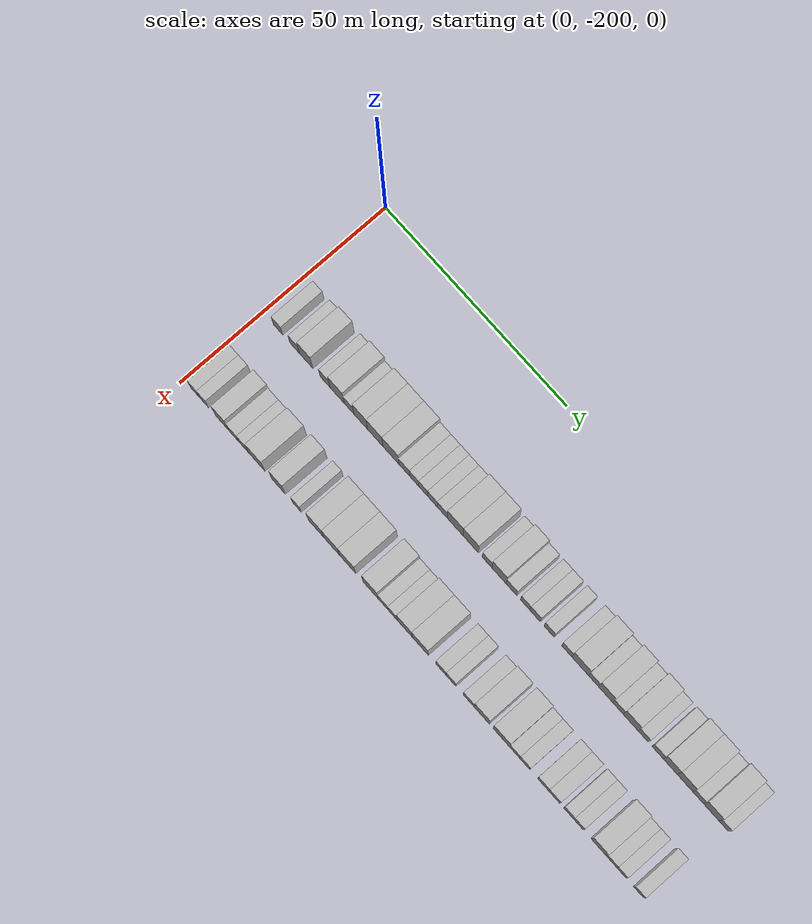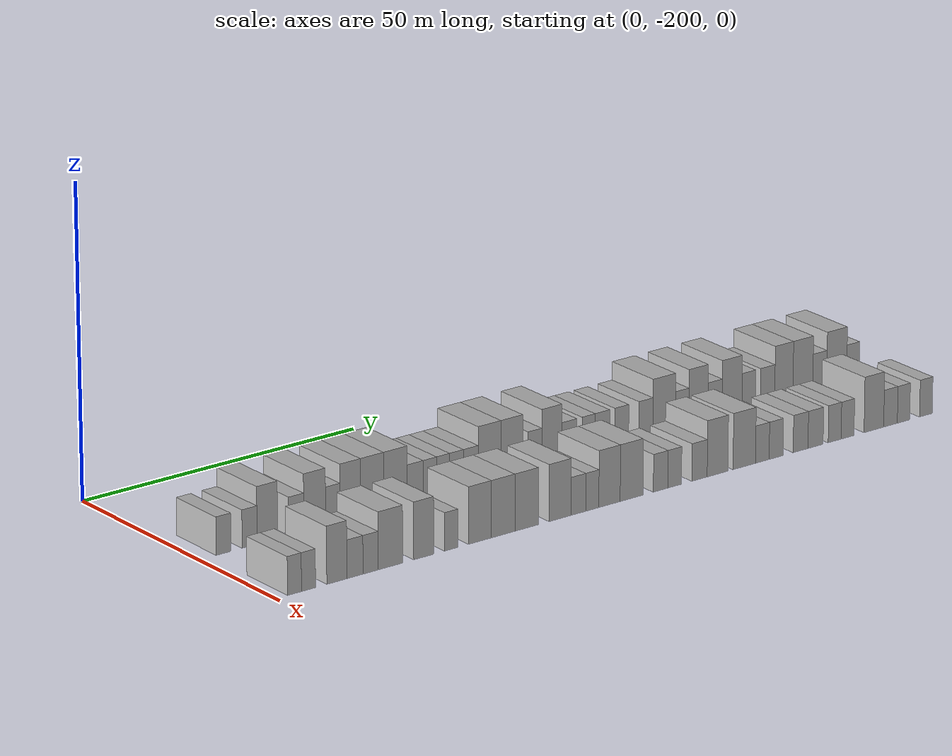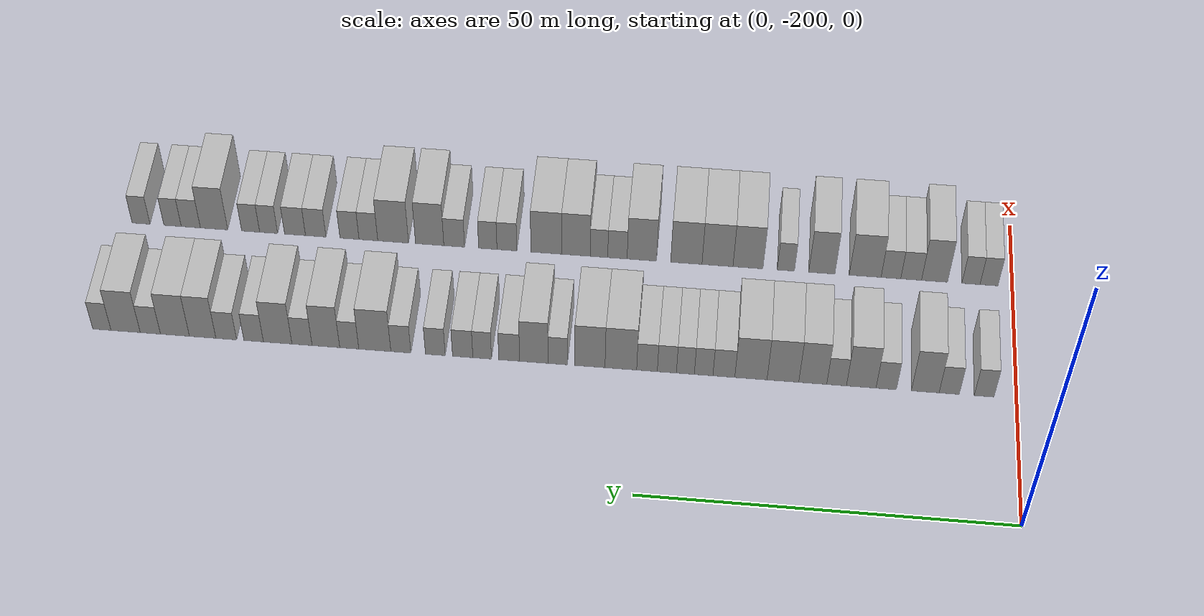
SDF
<sdf version="1.6">
 <world name="default">
  <model name="building_1">
   <static>1</static>
   <pose>25.0000 -195.6817 0 0.000000 0.000000 0.000000</pose>
   <link name="link">
    <pose>0 0 3.00 0 0 0</pose>
    <collision name="collision"><geometry><box><size>10.0000 2.6366 6.0000</size></box></geometry></collision>
    <visual name="visual">
     <cast_shadows>0</cast_shadows>
     <geometry><box><size>10.0000 2.6366 6.0000</size></box></geometry>
     <material>
      <script>
       <uri>model://HANNAS_wall/materials/scripts</uri>
       <uri>model://HANNAS_wall/materials/textures</uri>
       <name>vrc/HANNAS_wall</name>
      </script>
     </material>
    </visual>
   </link>
  </model>
  <model name="building_2">
   <static>1</static>
   <pose>25.0000 -191.0178 0 0.000000 0.000000 0.000000</pose>
   <link name="link">
    <pose>0 0 3.00 0 0 0</pose>
    <collision name="collision"><geometry><box><size>10.0000 2.6912 6.0000</size></box></geometry></collision>
    <visual name="visual">
     <cast_shadows>0</cast_shadows>
     <geometry><box><size>10.0000 2.6912 6.0000</size></box></geometry>
     <material>
      <script>
       <uri>model://HANNAS_wall/materials/scripts</uri>
       <uri>model://HANNAS_wall/materials/textures</uri>
       <name>vrc/HANNAS_wall</name>
      </script>
     </material>
    </visual>
   </link>
  </model>
  <model name="building_3">
   <static>1</static>
   <pose>25.0000 -187.8181 0 0.000000 0.000000 0.000000</pose>
   <link name="link">
    <pose>0 0 4.50 0 0 0</pose>
    <collision name="collision"><geometry><box><size>10.0000 3.7082 9.0000</size></box></geometry></collision>
    <visual name="visual">
     <cast_shadows>0</cast_shadows>
     <geometry><box><size>10.0000 3.7082 9.0000</size></box></geometry>
     <material>
      <script>
       <uri>model://HANNAS_wall/materials/scripts</uri>
       <uri>model://HANNAS_wall/materials/textures</uri>
       <name>vrc/HANNAS_wall</name>
      </script>
     </material>
    </visual>
   </link>
  </model>
  <model name="building_4">
   <static>1</static>
   <pose>25.0000 -182.5960 0 0.000000 0.000000 0.000000</pose>
   <link name="link">
    <pose>0 0 3.00 0 0 0</pose>
    <collision name="collision"><geometry><box><size>10.0000 2.7359 6.0000</size></box></geometry></collision>
    <visual name="visual">
     <cast_shadows>0</cast_shadows>
     <geometry><box><size>10.0000 2.7359 6.0000</size></box></geometry>
     <material>
      <script>
       <uri>model://HANNAS_wall/materials/scripts</uri>
       <uri>model://HANNAS_wall/materials/textures</uri>
       <name>vrc/HANNAS_wall</name>
      </script>
     </material>
    </visual>
   </link>
  </model>
  <model name="building_5">
   <static>1</static>
   <pose>25.0000 -179.2441 0 0.000000 0.000000 0.000000</pose>
   <link name="link">
    <pose>0 0 4.50 0 0 0</pose>
    <collision name="collision"><geometry><box><size>10.0000 3.9679 9.0000</size></box></geometry></collision>
    <visual name="visual">
     <cast_shadows>0</cast_shadows>
     <geometry><box><size>10.0000 3.9679 9.0000</size></box></geometry>
     <material>
      <script>
       <uri>model://HANNAS_wall/materials/scripts</uri>
       <uri>model://HANNAS_wall/materials/textures</uri>
       <name>vrc/HANNAS_wall</name>
      </script>
     </material>
    </visual>
   </link>
  </model>
  <model name="building_6">
   <static>1</static>
   <pose>25.0000 -175.9373 0 0.000000 0.000000 0.000000</pose>
   <link name="link">
    <pose>0 0 3.00 0 0 0</pose>
    <collision name="collision"><geometry><box><size>10.0000 2.6457 6.0000</size></box></geometry></collision>
    <visual name="visual">
     <cast_shadows>0</cast_shadows>
     <geometry><box><size>10.0000 2.6457 6.0000</size></box></geometry>
     <material>
      <script>
       <uri>model://HANNAS_wall/materials/scripts</uri>
       <uri>model://HANNAS_wall/materials/textures</uri>
       <name>vrc/HANNAS_wall</name>
      </script>
     </material>
    </visual>
   </link>
  </model>
  <model name="building_7">
   <static>1</static>
   <pose>25.0000 -172.7317 0 0.000000 0.000000 0.000000</pose>
   <link name="link">
    <pose>0 0 4.50 0 0 0</pose>
    <collision name="collision"><geometry><box><size>10.0000 3.7654 9.0000</size></box></geometry></collision>
    <visual name="visual">
     <cast_shadows>0</cast_shadows>
     <geometry><box><size>10.0000 3.7654 9.0000</size></box></geometry>
     <material>
      <script>
       <uri>model://HANNAS_wall/materials/scripts</uri>
       <uri>model://HANNAS_wall/materials/textures</uri>
       <name>vrc/HANNAS_wall</name>
      </script>
     </material>
    </visual>
   </link>
  </model>
  <model name="building_8">
   <static>1</static>
   <pose>25.0000 -168.7135 0 0.000000 0.000000 0.000000</pose>
   <link name="link">
    <pose>0 0 4.50 0 0 0</pose>
    <collision name="collision"><geometry><box><size>10.0000 4.2710 9.0000</size></box></geometry></collision>
    <visual name="visual">
     <cast_shadows>0</cast_shadows>
     <geometry><box><size>10.0000 4.2710 9.0000</size></box></geometry>
     <material>
      <script>
       <uri>model://HANNAS_wall/materials/scripts</uri>
       <uri>model://HANNAS_wall/materials/textures</uri>
       <name>vrc/HANNAS_wall</name>
      </script>
     </material>
    </visual>
   </link>
  </model>
  <model name="building_9">
   <static>1</static>
   <pose>25.0000 -164.4057 0 0.000000 0.000000 0.000000</pose>
   <link name="link">
    <pose>0 0 4.50 0 0 0</pose>
    <collision name="collision"><geometry><box><size>10.0000 4.3447 9.0000</size></box></geometry></collision>
    <visual name="visual">
     <cast_shadows>0</cast_shadows>
     <geometry><box><size>10.0000 4.3447 9.0000</size></box></geometry>
     <material>
      <script>
       <uri>model://HANNAS_wall/materials/scripts</uri>
       <uri>model://HANNAS_wall/materials/textures</uri>
       <name>vrc/HANNAS_wall</name>
      </script>
     </material>
    </visual>
   </link>
  </model>
  <model name="building_10">
   <static>1</static>
   <pose>25.0000 -160.7560 0 0.000000 0.000000 0.000000</pose>
   <link name="link">
    <pose>0 0 3.00 0 0 0</pose>
    <collision name="collision"><geometry><box><size>10.0000 2.9547 6.0000</size></box></geometry></collision>
    <visual name="visual">
     <cast_shadows>0</cast_shadows>
     <geometry><box><size>10.0000 2.9547 6.0000</size></box></geometry>
     <material>
      <script>
       <uri>model://HANNAS_wall/materials/scripts</uri>
       <uri>model://HANNAS_wall/materials/textures</uri>
       <name>vrc/HANNAS_wall</name>
      </script>
     </material>
    </visual>
   </link>
  </model>
  <model name="building_11">
   <static>1</static>
   <pose>25.0000 -158.0218 0 0.000000 0.000000 0.000000</pose>
   <link name="link">
    <pose>0 0 3.00 0 0 0</pose>
    <collision name="collision"><geometry><box><size>10.0000 2.5139 6.0000</size></box></geometry></collision>
    <visual name="visual">
     <cast_shadows>0</cast_shadows>
     <geometry><box><size>10.0000 2.5139 6.0000</size></box></geometry>
     <material>
      <script>
       <uri>model://HANNAS_wall/materials/scripts</uri>
       <uri>model://HANNAS_wall/materials/textures</uri>
       <name>vrc/HANNAS_wall</name>
      </script>
     </material>
    </visual>
   </link>
  </model>
  <model name="building_12">
   <static>1</static>
   <pose>25.0000 -155.5524 0 0.000000 0.000000 0.000000</pose>
   <link name="link">
    <pose>0 0 3.00 0 0 0</pose>
    <collision name="collision"><geometry><box><size>10.0000 2.4248 6.0000</size></box></geometry></collision>
    <visual name="visual">
     <cast_shadows>0</cast_shadows>
     <geometry><box><size>10.0000 2.4248 6.0000</size></box></geometry>
     <material>
      <script>
       <uri>model://HANNAS_wall/materials/scripts</uri>
       <uri>model://HANNAS_wall/materials/textures</uri>
       <name>vrc/HANNAS_wall</name>
      </script>
     </material>
    </visual>
   </link>
  </model>
  <model name="building_13">
   <static>1</static>
   <pose>25.0000 -153.0496 0 0.000000 0.000000 0.000000</pose>
   <link name="link">
    <pose>0 0 3.00 0 0 0</pose>
    <collision name="collision"><geometry><box><size>10.0000 2.5808 6.0000</size></box></geometry></collision>
    <visual name="visual">
     <cast_shadows>0</cast_shadows>
     <geometry><box><size>10.0000 2.5808 6.0000</size></box></geometry>
     <material>
      <script>
       <uri>model://HANNAS_wall/materials/scripts</uri>
       <uri>model://HANNAS_wall/materials/textures</uri>
       <name>vrc/HANNAS_wall</name>
      </script>
     </material>
    </visual>
   </link>
  </model>
  <model name="building_14">
   <static>1</static>
   <pose>25.0000 -150.3608 0 0.000000 0.000000 0.000000</pose>
   <link name="link">
    <pose>0 0 3.00 0 0 0</pose>
    <collision name="collision"><geometry><box><size>10.0000 2.7970 6.0000</size></box></geometry></collision>
    <visual name="visual">
     <cast_shadows>0</cast_shadows>
     <geometry><box><size>10.0000 2.7970 6.0000</size></box></geometry>
     <material>
      <script>
       <uri>model://HANNAS_wall/materials/scripts</uri>
       <uri>model://HANNAS_wall/materials/textures</uri>
       <name>vrc/HANNAS_wall</name>
      </script>
     </material>
    </visual>
   </link>
  </model>
  <model name="building_15">
   <static>1</static>
   <pose>25.0000 -146.8116 0 0.000000 0.000000 0.000000</pose>
   <link name="link">
    <pose>0 0 4.50 0 0 0</pose>
    <collision name="collision"><geometry><box><size>10.0000 4.3014 9.0000</size></box></geometry></collision>
    <visual name="visual">
     <cast_shadows>0</cast_shadows>
     <geometry><box><size>10.0000 4.3014 9.0000</size></box></geometry>
     <material>
      <script>
       <uri>model://HANNAS_wall/materials/scripts</uri>
       <uri>model://HANNAS_wall/materials/textures</uri>
       <name>vrc/HANNAS_wall</name>
      </script>
     </material>
    </visual>
   </link>
  </model>
  <model name="building_16">
   <static>1</static>
   <pose>25.0000 -142.6003 0 0.000000 0.000000 0.000000</pose>
   <link name="link">
    <pose>0 0 4.50 0 0 0</pose>
    <collision name="collision"><geometry><box><size>10.0000 4.1212 9.0000</size></box></geometry></collision>
    <visual name="visual">
     <cast_shadows>0</cast_shadows>
     <geometry><box><size>10.0000 4.1212 9.0000</size></box></geometry>
     <material>
      <script>
       <uri>model://HANNAS_wall/materials/scripts</uri>
       <uri>model://HANNAS_wall/materials/textures</uri>
       <name>vrc/HANNAS_wall</name>
      </script>
     </material>
    </visual>
   </link>
  </model>
  <model name="building_17">
   <static>1</static>
   <pose>25.0000 -138.2279 0 0.000000 0.000000 0.000000</pose>
   <link name="link">
    <pose>0 0 3.00 0 0 0</pose>
    <collision name="collision"><geometry><box><size>10.0000 2.6235 6.0000</size></box></geometry></collision>
    <visual name="visual">
     <cast_shadows>0</cast_shadows>
     <geometry><box><size>10.0000 2.6235 6.0000</size></box></geometry>
     <material>
      <script>
       <uri>model://HANNAS_wall/materials/scripts</uri>
       <uri>model://HANNAS_wall/materials/textures</uri>
       <name>vrc/HANNAS_wall</name>
      </script>
     </material>
    </visual>
   </link>
  </model>
  <model name="building_18">
   <static>1</static>
   <pose>25.0000 -134.9828 0 0.000000 0.000000 0.000000</pose>
   <link name="link">
    <pose>0 0 4.50 0 0 0</pose>
    <collision name="collision"><geometry><box><size>10.0000 3.8667 9.0000</size></box></geometry></collision>
    <visual name="visual">
     <cast_shadows>0</cast_shadows>
     <geometry><box><size>10.0000 3.8667 9.0000</size></box></geometry>
     <material>
      <script>
       <uri>model://HANNAS_wall/materials/scripts</uri>
       <uri>model://HANNAS_wall/materials/textures</uri>
       <name>vrc/HANNAS_wall</name>
      </script>
     </material>
    </visual>
   </link>
  </model>
  <model name="building_19">
   <static>1</static>
   <pose>25.0000 -131.6257 0 0.000000 0.000000 0.000000</pose>
   <link name="link">
    <pose>0 0 3.00 0 0 0</pose>
    <collision name="collision"><geometry><box><size>10.0000 2.8475 6.0000</size></box></geometry></collision>
    <visual name="visual">
     <cast_shadows>0</cast_shadows>
     <geometry><box><size>10.0000 2.8475 6.0000</size></box></geometry>
     <material>
      <script>
       <uri>model://HANNAS_wall/materials/scripts</uri>
       <uri>model://HANNAS_wall/materials/textures</uri>
       <name>vrc/HANNAS_wall</name>
      </script>
     </material>
    </visual>
   </link>
  </model>
  <model name="building_20">
   <static>1</static>
   <pose>25.0000 -127.9297 0 0.000000 0.000000 0.000000</pose>
   <link name="link">
    <pose>0 0 3.00 0 0 0</pose>
    <collision name="collision"><geometry><box><size>10.0000 2.5444 6.0000</size></box></geometry></collision>
    <visual name="visual">
     <cast_shadows>0</cast_shadows>
     <geometry><box><size>10.0000 2.5444 6.0000</size></box></geometry>
     <material>
      <script>
       <uri>model://HANNAS_wall/materials/scripts</uri>
       <uri>model://HANNAS_wall/materials/textures</uri>
       <name>vrc/HANNAS_wall</name>
      </script>
     </material>
    </visual>
   </link>
  </model>
  <model name="building_21">
   <static>1</static>
   <pose>25.0000 -125.2674 0 0.000000 0.000000 0.000000</pose>
   <link name="link">
    <pose>0 0 3.00 0 0 0</pose>
    <collision name="collision"><geometry><box><size>10.0000 2.7802 6.0000</size></box></geometry></collision>
    <visual name="visual">
     <cast_shadows>0</cast_shadows>
     <geometry><box><size>10.0000 2.7802 6.0000</size></box></geometry>
     <material>
      <script>
       <uri>model://HANNAS_wall/materials/scripts</uri>
       <uri>model://HANNAS_wall/materials/textures</uri>
       <name>vrc/HANNAS_wall</name>
      </script>
     </material>
    </visual>
   </link>
  </model>
  <model name="building_22">
   <static>1</static>
   <pose>25.0000 -121.5234 0 0.000000 0.000000 0.000000</pose>
   <link name="link">
    <pose>0 0 3.00 0 0 0</pose>
    <collision name="collision"><geometry><box><size>10.0000 2.7080 6.0000</size></box></geometry></collision>
    <visual name="visual">
     <cast_shadows>0</cast_shadows>
     <geometry><box><size>10.0000 2.7080 6.0000</size></box></geometry>
     <material>
      <script>
       <uri>model://HANNAS_wall/materials/scripts</uri>
       <uri>model://HANNAS_wall/materials/textures</uri>
       <name>vrc/HANNAS_wall</name>
      </script>
     </material>
    </visual>
   </link>
  </model>
  <model name="building_23">
   <static>1</static>
   <pose>25.0000 -116.7944 0 0.000000 0.000000 0.000000</pose>
   <link name="link">
    <pose>0 0 3.00 0 0 0</pose>
    <collision name="collision"><geometry><box><size>10.0000 2.7501 6.0000</size></box></geometry></collision>
    <visual name="visual">
     <cast_shadows>0</cast_shadows>
     <geometry><box><size>10.0000 2.7501 6.0000</size></box></geometry>
     <material>
      <script>
       <uri>model://HANNAS_wall/materials/scripts</uri>
       <uri>model://HANNAS_wall/materials/textures</uri>
       <name>vrc/HANNAS_wall</name>
      </script>
     </material>
    </visual>
   </link>
  </model>
  <model name="building_24">
   <static>1</static>
   <pose>25.0000 -113.2171 0 0.000000 0.000000 0.000000</pose>
   <link name="link">
    <pose>0 0 4.50 0 0 0</pose>
    <collision name="collision"><geometry><box><size>10.0000 4.4045 9.0000</size></box></geometry></collision>
    <visual name="visual">
     <cast_shadows>0</cast_shadows>
     <geometry><box><size>10.0000 4.4045 9.0000</size></box></geometry>
     <material>
      <script>
       <uri>model://HANNAS_wall/materials/scripts</uri>
       <uri>model://HANNAS_wall/materials/textures</uri>
       <name>vrc/HANNAS_wall</name>
      </script>
     </material>
    </visual>
   </link>
  </model>
  <model name="building_25">
   <static>1</static>
   <pose>25.0000 -109.7025 0 0.000000 0.000000 0.000000</pose>
   <link name="link">
    <pose>0 0 3.00 0 0 0</pose>
    <collision name="collision"><geometry><box><size>10.0000 2.6247 6.0000</size></box></geometry></collision>
    <visual name="visual">
     <cast_shadows>0</cast_shadows>
     <geometry><box><size>10.0000 2.6247 6.0000</size></box></geometry>
     <material>
      <script>
       <uri>model://HANNAS_wall/materials/scripts</uri>
       <uri>model://HANNAS_wall/materials/textures</uri>
       <name>vrc/HANNAS_wall</name>
      </script>
     </material>
    </visual>
   </link>
  </model>
  <model name="building_26">
   <static>1</static>
   <pose>25.0000 -106.4884 0 0.000000 0.000000 0.000000</pose>
   <link name="link">
    <pose>0 0 4.50 0 0 0</pose>
    <collision name="collision"><geometry><box><size>10.0000 3.8035 9.0000</size></box></geometry></collision>
    <visual name="visual">
     <cast_shadows>0</cast_shadows>
     <geometry><box><size>10.0000 3.8035 9.0000</size></box></geometry>
     <material>
      <script>
       <uri>model://HANNAS_wall/materials/scripts</uri>
       <uri>model://HANNAS_wall/materials/textures</uri>
       <name>vrc/HANNAS_wall</name>
      </script>
     </material>
    </visual>
   </link>
  </model>
  <model name="building_27">
   <static>1</static>
   <pose>25.0000 -103.1999 0 0.000000 0.000000 0.000000</pose>
   <link name="link">
    <pose>0 0 3.00 0 0 0</pose>
    <collision name="collision"><geometry><box><size>10.0000 2.7735 6.0000</size></box></geometry></collision>
    <visual name="visual">
     <cast_shadows>0</cast_shadows>
     <geometry><box><size>10.0000 2.7735 6.0000</size></box></geometry>
     <material>
      <script>
       <uri>model://HANNAS_wall/materials/scripts</uri>
       <uri>model://HANNAS_wall/materials/textures</uri>
       <name>vrc/HANNAS_wall</name>
      </script>
     </material>
    </visual>
   </link>
  </model>
  <model name="building_28">
   <static>1</static>
   <pose>25.0000 -99.8397 0 0.000000 0.000000 0.000000</pose>
   <link name="link">
    <pose>0 0 4.50 0 0 0</pose>
    <collision name="collision"><geometry><box><size>10.0000 3.9468 9.0000</size></box></geometry></collision>
    <visual name="visual">
     <cast_shadows>0</cast_shadows>
     <geometry><box><size>10.0000 3.9468 9.0000</size></box></geometry>
     <material>
      <script>
       <uri>model://HANNAS_wall/materials/scripts</uri>
       <uri>model://HANNAS_wall/materials/textures</uri>
       <name>vrc/HANNAS_wall</name>
      </script>
     </material>
    </visual>
   </link>
  </model>
  <model name="building_29">
   <static>1</static>
   <pose>25.0000 -96.5197 0 0.000000 0.000000 0.000000</pose>
   <link name="link">
    <pose>0 0 3.00 0 0 0</pose>
    <collision name="collision"><geometry><box><size>10.0000 2.6931 6.0000</size></box></geometry></collision>
    <visual name="visual">
     <cast_shadows>0</cast_shadows>
     <geometry><box><size>10.0000 2.6931 6.0000</size></box></geometry>
     <material>
      <script>
       <uri>model://HANNAS_wall/materials/scripts</uri>
       <uri>model://HANNAS_wall/materials/textures</uri>
       <name>vrc/HANNAS_wall</name>
      </script>
     </material>
    </visual>
   </link>
  </model>
  <model name="building_30">
   <static>1</static>
   <pose>25.0000 -92.7318 0 0.000000 0.000000 0.000000</pose>
   <link name="link">
    <pose>0 0 3.00 0 0 0</pose>
    <collision name="collision"><geometry><box><size>10.0000 2.8827 6.0000</size></box></geometry></collision>
    <visual name="visual">
     <cast_shadows>0</cast_shadows>
     <geometry><box><size>10.0000 2.8827 6.0000</size></box></geometry>
     <material>
      <script>
       <uri>model://HANNAS_wall/materials/scripts</uri>
       <uri>model://HANNAS_wall/materials/textures</uri>
       <name>vrc/HANNAS_wall</name>
      </script>
     </material>
    </visual>
   </link>
  </model>
  <model name="building_31">
   <static>1</static>
   <pose>25.0000 -89.4552 0 0.000000 0.000000 0.000000</pose>
   <link name="link">
    <pose>0 0 4.50 0 0 0</pose>
    <collision name="collision"><geometry><box><size>10.0000 3.6705 9.0000</size></box></geometry></collision>
    <visual name="visual">
     <cast_shadows>0</cast_shadows>
     <geometry><box><size>10.0000 3.6705 9.0000</size></box></geometry>
     <material>
      <script>
       <uri>model://HANNAS_wall/materials/scripts</uri>
       <uri>model://HANNAS_wall/materials/textures</uri>
       <name>vrc/HANNAS_wall</name>
      </script>
     </material>
    </visual>
   </link>
  </model>
  <model name="building_32">
   <static>1</static>
   <pose>25.0000 -85.6126 0 0.000000 0.000000 0.000000</pose>
   <link name="link">
    <pose>0 0 4.50 0 0 0</pose>
    <collision name="collision"><geometry><box><size>10.0000 4.0149 9.0000</size></box></geometry></collision>
    <visual name="visual">
     <cast_shadows>0</cast_shadows>
     <geometry><box><size>10.0000 4.0149 9.0000</size></box></geometry>
     <material>
      <script>
       <uri>model://HANNAS_wall/materials/scripts</uri>
       <uri>model://HANNAS_wall/materials/textures</uri>
       <name>vrc/HANNAS_wall</name>
      </script>
     </material>
    </visual>
   </link>
  </model>
  <model name="building_33">
   <static>1</static>
   <pose>25.0000 -82.1980 0 0.000000 0.000000 0.000000</pose>
   <link name="link">
    <pose>0 0 3.00 0 0 0</pose>
    <collision name="collision"><geometry><box><size>10.0000 2.8143 6.0000</size></box></geometry></collision>
    <visual name="visual">
     <cast_shadows>0</cast_shadows>
     <geometry><box><size>10.0000 2.8143 6.0000</size></box></geometry>
     <material>
      <script>
       <uri>model://HANNAS_wall/materials/scripts</uri>
       <uri>model://HANNAS_wall/materials/textures</uri>
       <name>vrc/HANNAS_wall</name>
      </script>
     </material>
    </visual>
   </link>
  </model>
  <model name="building_34">
   <static>1</static>
   <pose>25.0000 -78.7578 0 0.000000 0.000000 0.000000</pose>
   <link name="link">
    <pose>0 0 4.50 0 0 0</pose>
    <collision name="collision"><geometry><box><size>10.0000 4.0661 9.0000</size></box></geometry></collision>
    <visual name="visual">
     <cast_shadows>0</cast_shadows>
     <geometry><box><size>10.0000 4.0661 9.0000</size></box></geometry>
     <material>
      <script>
       <uri>model://HANNAS_wall/materials/scripts</uri>
       <uri>model://HANNAS_wall/materials/textures</uri>
       <name>vrc/HANNAS_wall</name>
      </script>
     </material>
    </visual>
   </link>
  </model>
  <model name="building_35">
   <static>1</static>
   <pose>25.0000 -75.4524 0 0.000000 0.000000 0.000000</pose>
   <link name="link">
    <pose>0 0 3.00 0 0 0</pose>
    <collision name="collision"><geometry><box><size>10.0000 2.5446 6.0000</size></box></geometry></collision>
    <visual name="visual">
     <cast_shadows>0</cast_shadows>
     <geometry><box><size>10.0000 2.5446 6.0000</size></box></geometry>
     <material>
      <script>
       <uri>model://HANNAS_wall/materials/scripts</uri>
       <uri>model://HANNAS_wall/materials/textures</uri>
       <name>vrc/HANNAS_wall</name>
      </script>
     </material>
    </visual>
   </link>
  </model>
  <model name="building_101">
   <static>1</static>
   <pose>44.0000 -196.7604 0 0.000000 0.000000 0.000000</pose>
   <link name="link">
    <pose>0 0 3.00 0 0 0</pose>
    <collision name="collision"><geometry><box><size>10.0000 2.4791 6.0000</size></box></geometry></collision>
    <visual name="visual">
     <cast_shadows>0</cast_shadows>
     <geometry><box><size>10.0000 2.4791 6.0000</size></box></geometry>
     <material>
      <script>
       <uri>model://HANNAS_wall/materials/scripts</uri>
       <uri>model://HANNAS_wall/materials/textures</uri>
       <name>vrc/HANNAS_wall</name>
      </script>
     </material>
    </visual>
   </link>
  </model>
  <model name="building_102">
   <static>1</static>
   <pose>44.0000 -194.2681 0 0.000000 0.000000 0.000000</pose>
   <link name="link">
    <pose>0 0 3.00 0 0 0</pose>
    <collision name="collision"><geometry><box><size>10.0000 2.5056 6.0000</size></box></geometry></collision>
    <visual name="visual">
     <cast_shadows>0</cast_shadows>
     <geometry><box><size>10.0000 2.5056 6.0000</size></box></geometry>
     <material>
      <script>
       <uri>model://HANNAS_wall/materials/scripts</uri>
       <uri>model://HANNAS_wall/materials/textures</uri>
       <name>vrc/HANNAS_wall</name>
      </script>
     </material>
    </visual>
   </link>
  </model>
  <model name="building_103">
   <static>1</static>
   <pose>44.0000 -189.2102 0 0.000000 0.000000 0.000000</pose>
   <link name="link">
    <pose>0 0 4.50 0 0 0</pose>
    <collision name="collision"><geometry><box><size>10.0000 3.6102 9.0000</size></box></geometry></collision>
    <visual name="visual">
     <cast_shadows>0</cast_shadows>
     <geometry><box><size>10.0000 3.6102 9.0000</size></box></geometry>
     <material>
      <script>
       <uri>model://HANNAS_wall/materials/scripts</uri>
       <uri>model://HANNAS_wall/materials/textures</uri>
       <name>vrc/HANNAS_wall</name>
      </script>
     </material>
    </visual>
   </link>
  </model>
  <model name="building_104">
   <static>1</static>
   <pose>44.0000 -185.9645 0 0.000000 0.000000 0.000000</pose>
   <link name="link">
    <pose>0 0 3.00 0 0 0</pose>
    <collision name="collision"><geometry><box><size>10.0000 2.8812 6.0000</size></box></geometry></collision>
    <visual name="visual">
     <cast_shadows>0</cast_shadows>
     <geometry><box><size>10.0000 2.8812 6.0000</size></box></geometry>
     <material>
      <script>
       <uri>model://HANNAS_wall/materials/scripts</uri>
       <uri>model://HANNAS_wall/materials/textures</uri>
       <name>vrc/HANNAS_wall</name>
      </script>
     </material>
    </visual>
   </link>
  </model>
  <model name="building_105">
   <static>1</static>
   <pose>44.0000 -183.1548 0 0.000000 0.000000 0.000000</pose>
   <link name="link">
    <pose>0 0 3.00 0 0 0</pose>
    <collision name="collision"><geometry><box><size>10.0000 2.7381 6.0000</size></box></geometry></collision>
    <visual name="visual">
     <cast_shadows>0</cast_shadows>
     <geometry><box><size>10.0000 2.7381 6.0000</size></box></geometry>
     <material>
      <script>
       <uri>model://HANNAS_wall/materials/scripts</uri>
       <uri>model://HANNAS_wall/materials/textures</uri>
       <name>vrc/HANNAS_wall</name>
      </script>
     </material>
    </visual>
   </link>
  </model>
  <model name="building_106">
   <static>1</static>
   <pose>44.0000 -179.5710 0 0.000000 0.000000 0.000000</pose>
   <link name="link">
    <pose>0 0 4.50 0 0 0</pose>
    <collision name="collision"><geometry><box><size>10.0000 4.4294 9.0000</size></box></geometry></collision>
    <visual name="visual">
     <cast_shadows>0</cast_shadows>
     <geometry><box><size>10.0000 4.4294 9.0000</size></box></geometry>
     <material>
      <script>
       <uri>model://HANNAS_wall/materials/scripts</uri>
       <uri>model://HANNAS_wall/materials/textures</uri>
       <name>vrc/HANNAS_wall</name>
      </script>
     </material>
    </visual>
   </link>
  </model>
  <model name="building_107">
   <static>1</static>
   <pose>44.0000 -173.5316 0 0.000000 0.000000 0.000000</pose>
   <link name="link">
    <pose>0 0 4.50 0 0 0</pose>
    <collision name="collision"><geometry><box><size>10.0000 3.6496 9.0000</size></box></geometry></collision>
    <visual name="visual">
     <cast_shadows>0</cast_shadows>
     <geometry><box><size>10.0000 3.6496 9.0000</size></box></geometry>
     <material>
      <script>
       <uri>model://HANNAS_wall/materials/scripts</uri>
       <uri>model://HANNAS_wall/materials/textures</uri>
       <name>vrc/HANNAS_wall</name>
      </script>
     </material>
    </visual>
   </link>
  </model>
  <model name="building_108">
   <static>1</static>
   <pose>44.0000 -168.5049 0 0.000000 0.000000 0.000000</pose>
   <link name="link">
    <pose>0 0 3.00 0 0 0</pose>
    <collision name="collision"><geometry><box><size>10.0000 2.4036 6.0000</size></box></geometry></collision>
    <visual name="visual">
     <cast_shadows>0</cast_shadows>
     <geometry><box><size>10.0000 2.4036 6.0000</size></box></geometry>
     <material>
      <script>
       <uri>model://HANNAS_wall/materials/scripts</uri>
       <uri>model://HANNAS_wall/materials/textures</uri>
       <name>vrc/HANNAS_wall</name>
      </script>
     </material>
    </visual>
   </link>
  </model>
  <model name="building_109">
   <static>1</static>
   <pose>44.0000 -163.2033 0 0.000000 0.000000 0.000000</pose>
   <link name="link">
    <pose>0 0 4.50 0 0 0</pose>
    <collision name="collision"><geometry><box><size>10.0000 4.1996 9.0000</size></box></geometry></collision>
    <visual name="visual">
     <cast_shadows>0</cast_shadows>
     <geometry><box><size>10.0000 4.1996 9.0000</size></box></geometry>
     <material>
      <script>
       <uri>model://HANNAS_wall/materials/scripts</uri>
       <uri>model://HANNAS_wall/materials/textures</uri>
       <name>vrc/HANNAS_wall</name>
      </script>
     </material>
    </visual>
   </link>
  </model>
  <model name="building_110">
   <static>1</static>
   <pose>44.0000 -158.9315 0 0.000000 0.000000 0.000000</pose>
   <link name="link">
    <pose>0 0 4.50 0 0 0</pose>
    <collision name="collision"><geometry><box><size>10.0000 4.3441 9.0000</size></box></geometry></collision>
    <visual name="visual">
     <cast_shadows>0</cast_shadows>
     <geometry><box><size>10.0000 4.3441 9.0000</size></box></geometry>
     <material>
      <script>
       <uri>model://HANNAS_wall/materials/scripts</uri>
       <uri>model://HANNAS_wall/materials/textures</uri>
       <name>vrc/HANNAS_wall</name>
      </script>
     </material>
    </visual>
   </link>
  </model>
  <model name="building_111">
   <static>1</static>
   <pose>44.0000 -154.5639 0 0.000000 0.000000 0.000000</pose>
   <link name="link">
    <pose>0 0 4.50 0 0 0</pose>
    <collision name="collision"><geometry><box><size>10.0000 4.3911 9.0000</size></box></geometry></collision>
    <visual name="visual">
     <cast_shadows>0</cast_shadows>
     <geometry><box><size>10.0000 4.3911 9.0000</size></box></geometry>
     <material>
      <script>
       <uri>model://HANNAS_wall/materials/scripts</uri>
       <uri>model://HANNAS_wall/materials/textures</uri>
       <name>vrc/HANNAS_wall</name>
      </script>
     </material>
    </visual>
   </link>
  </model>
  <model name="building_112">
   <static>1</static>
   <pose>44.0000 -148.3011 0 0.000000 0.000000 0.000000</pose>
   <link name="link">
    <pose>0 0 4.50 0 0 0</pose>
    <collision name="collision"><geometry><box><size>10.0000 4.1345 9.0000</size></box></geometry></collision>
    <visual name="visual">
     <cast_shadows>0</cast_shadows>
     <geometry><box><size>10.0000 4.1345 9.0000</size></box></geometry>
     <material>
      <script>
       <uri>model://HANNAS_wall/materials/scripts</uri>
       <uri>model://HANNAS_wall/materials/textures</uri>
       <name>vrc/HANNAS_wall</name>
      </script>
     </material>
    </visual>
   </link>
  </model>
  <model name="building_113">
   <static>1</static>
   <pose>44.0000 -144.8685 0 0.000000 0.000000 0.000000</pose>
   <link name="link">
    <pose>0 0 3.00 0 0 0</pose>
    <collision name="collision"><geometry><box><size>10.0000 2.7309 6.0000</size></box></geometry></collision>
    <visual name="visual">
     <cast_shadows>0</cast_shadows>
     <geometry><box><size>10.0000 2.7309 6.0000</size></box></geometry>
     <material>
      <script>
       <uri>model://HANNAS_wall/materials/scripts</uri>
       <uri>model://HANNAS_wall/materials/textures</uri>
       <name>vrc/HANNAS_wall</name>
      </script>
     </material>
    </visual>
   </link>
  </model>
  <model name="building_114">
   <static>1</static>
   <pose>44.0000 -142.2607 0 0.000000 0.000000 0.000000</pose>
   <link name="link">
    <pose>0 0 3.00 0 0 0</pose>
    <collision name="collision"><geometry><box><size>10.0000 2.4846 6.0000</size></box></geometry></collision>
    <visual name="visual">
     <cast_shadows>0</cast_shadows>
     <geometry><box><size>10.0000 2.4846 6.0000</size></box></geometry>
     <material>
      <script>
       <uri>model://HANNAS_wall/materials/scripts</uri>
       <uri>model://HANNAS_wall/materials/textures</uri>
       <name>vrc/HANNAS_wall</name>
      </script>
     </material>
    </visual>
   </link>
  </model>
  <model name="building_115">
   <static>1</static>
   <pose>44.0000 -139.0023 0 0.000000 0.000000 0.000000</pose>
   <link name="link">
    <pose>0 0 4.50 0 0 0</pose>
    <collision name="collision"><geometry><box><size>10.0000 4.0321 9.0000</size></box></geometry></collision>
    <visual name="visual">
     <cast_shadows>0</cast_shadows>
     <geometry><box><size>10.0000 4.0321 9.0000</size></box></geometry>
     <material>
      <script>
       <uri>model://HANNAS_wall/materials/scripts</uri>
       <uri>model://HANNAS_wall/materials/textures</uri>
       <name>vrc/HANNAS_wall</name>
      </script>
     </material>
    </visual>
   </link>
  </model>
  <model name="building_116">
   <static>1</static>
   <pose>44.0000 -134.8217 0 0.000000 0.000000 0.000000</pose>
   <link name="link">
    <pose>0 0 4.50 0 0 0</pose>
    <collision name="collision"><geometry><box><size>10.0000 4.3292 9.0000</size></box></geometry></collision>
    <visual name="visual">
     <cast_shadows>0</cast_shadows>
     <geometry><box><size>10.0000 4.3292 9.0000</size></box></geometry>
     <material>
      <script>
       <uri>model://HANNAS_wall/materials/scripts</uri>
       <uri>model://HANNAS_wall/materials/textures</uri>
       <name>vrc/HANNAS_wall</name>
      </script>
     </material>
    </visual>
   </link>
  </model>
  <model name="building_117">
   <static>1</static>
   <pose>44.0000 -129.2522 0 0.000000 0.000000 0.000000</pose>
   <link name="link">
    <pose>0 0 3.00 0 0 0</pose>
    <collision name="collision"><geometry><box><size>10.0000 2.8098 6.0000</size></box></geometry></collision>
    <visual name="visual">
     <cast_shadows>0</cast_shadows>
     <geometry><box><size>10.0000 2.8098 6.0000</size></box></geometry>
     <material>
      <script>
       <uri>model://HANNAS_wall/materials/scripts</uri>
       <uri>model://HANNAS_wall/materials/textures</uri>
       <name>vrc/HANNAS_wall</name>
      </script>
     </material>
    </visual>
   </link>
  </model>
  <model name="building_118">
   <static>1</static>
   <pose>44.0000 -126.5491 0 0.000000 0.000000 0.000000</pose>
   <link name="link">
    <pose>0 0 3.00 0 0 0</pose>
    <collision name="collision"><geometry><box><size>10.0000 2.5963 6.0000</size></box></geometry></collision>
    <visual name="visual">
     <cast_shadows>0</cast_shadows>
     <geometry><box><size>10.0000 2.5963 6.0000</size></box></geometry>
     <material>
      <script>
       <uri>model://HANNAS_wall/materials/scripts</uri>
       <uri>model://HANNAS_wall/materials/textures</uri>
       <name>vrc/HANNAS_wall</name>
      </script>
     </material>
    </visual>
   </link>
  </model>
  <model name="building_119">
   <static>1</static>
   <pose>44.0000 -121.7768 0 0.000000 0.000000 0.000000</pose>
   <link name="link">
    <pose>0 0 3.00 0 0 0</pose>
    <collision name="collision"><geometry><box><size>10.0000 2.9482 6.0000</size></box></geometry></collision>
    <visual name="visual">
     <cast_shadows>0</cast_shadows>
     <geometry><box><size>10.0000 2.9482 6.0000</size></box></geometry>
     <material>
      <script>
       <uri>model://HANNAS_wall/materials/scripts</uri>
       <uri>model://HANNAS_wall/materials/textures</uri>
       <name>vrc/HANNAS_wall</name>
      </script>
     </material>
    </visual>
   </link>
  </model>
  <model name="building_120">
   <static>1</static>
   <pose>44.0000 -118.2880 0 0.000000 0.000000 0.000000</pose>
   <link name="link">
    <pose>0 0 4.50 0 0 0</pose>
    <collision name="collision"><geometry><box><size>10.0000 4.0295 9.0000</size></box></geometry></collision>
    <visual name="visual">
     <cast_shadows>0</cast_shadows>
     <geometry><box><size>10.0000 4.0295 9.0000</size></box></geometry>
     <material>
      <script>
       <uri>model://HANNAS_wall/materials/scripts</uri>
       <uri>model://HANNAS_wall/materials/textures</uri>
       <name>vrc/HANNAS_wall</name>
      </script>
     </material>
    </visual>
   </link>
  </model>
  <model name="building_121">
   <static>1</static>
   <pose>44.0000 -113.0807 0 0.000000 0.000000 0.000000</pose>
   <link name="link">
    <pose>0 0 4.50 0 0 0</pose>
    <collision name="collision"><geometry><box><size>10.0000 4.3850 9.0000</size></box></geometry></collision>
    <visual name="visual">
     <cast_shadows>0</cast_shadows>
     <geometry><box><size>10.0000 4.3850 9.0000</size></box></geometry>
     <material>
      <script>
       <uri>model://HANNAS_wall/materials/scripts</uri>
       <uri>model://HANNAS_wall/materials/textures</uri>
       <name>vrc/HANNAS_wall</name>
      </script>
     </material>
    </visual>
   </link>
  </model>
  <model name="building_122">
   <static>1</static>
   <pose>44.0000 -109.5519 0 0.000000 0.000000 0.000000</pose>
   <link name="link">
    <pose>0 0 3.00 0 0 0</pose>
    <collision name="collision"><geometry><box><size>10.0000 2.6724 6.0000</size></box></geometry></collision>
    <visual name="visual">
     <cast_shadows>0</cast_shadows>
     <geometry><box><size>10.0000 2.6724 6.0000</size></box></geometry>
     <material>
      <script>
       <uri>model://HANNAS_wall/materials/scripts</uri>
       <uri>model://HANNAS_wall/materials/textures</uri>
       <name>vrc/HANNAS_wall</name>
      </script>
     </material>
    </visual>
   </link>
  </model>
  <model name="building_123">
   <static>1</static>
   <pose>44.0000 -106.8530 0 0.000000 0.000000 0.000000</pose>
   <link name="link">
    <pose>0 0 3.00 0 0 0</pose>
    <collision name="collision"><geometry><box><size>10.0000 2.7255 6.0000</size></box></geometry></collision>
    <visual name="visual">
     <cast_shadows>0</cast_shadows>
     <geometry><box><size>10.0000 2.7255 6.0000</size></box></geometry>
     <material>
      <script>
       <uri>model://HANNAS_wall/materials/scripts</uri>
       <uri>model://HANNAS_wall/materials/textures</uri>
       <name>vrc/HANNAS_wall</name>
      </script>
     </material>
    </visual>
   </link>
  </model>
  <model name="building_124">
   <static>1</static>
   <pose>44.0000 -102.0247 0 0.000000 0.000000 0.000000</pose>
   <link name="link">
    <pose>0 0 3.00 0 0 0</pose>
    <collision name="collision"><geometry><box><size>10.0000 2.9311 6.0000</size></box></geometry></collision>
    <visual name="visual">
     <cast_shadows>0</cast_shadows>
     <geometry><box><size>10.0000 2.9311 6.0000</size></box></geometry>
     <material>
      <script>
       <uri>model://HANNAS_wall/materials/scripts</uri>
       <uri>model://HANNAS_wall/materials/textures</uri>
       <name>vrc/HANNAS_wall</name>
      </script>
     </material>
    </visual>
   </link>
  </model>
  <model name="building_125">
   <static>1</static>
   <pose>44.0000 -99.0632 0 0.000000 0.000000 0.000000</pose>
   <link name="link">
    <pose>0 0 3.00 0 0 0</pose>
    <collision name="collision"><geometry><box><size>10.0000 2.9919 6.0000</size></box></geometry></collision>
    <visual name="visual">
     <cast_shadows>0</cast_shadows>
     <geometry><box><size>10.0000 2.9919 6.0000</size></box></geometry>
     <material>
      <script>
       <uri>model://HANNAS_wall/materials/scripts</uri>
       <uri>model://HANNAS_wall/materials/textures</uri>
       <name>vrc/HANNAS_wall</name>
      </script>
     </material>
    </visual>
   </link>
  </model>
  <model name="building_126">
   <static>1</static>
   <pose>44.0000 -95.2772 0 0.000000 0.000000 0.000000</pose>
   <link name="link">
    <pose>0 0 3.00 0 0 0</pose>
    <collision name="collision"><geometry><box><size>10.0000 2.5800 6.0000</size></box></geometry></collision>
    <visual name="visual">
     <cast_shadows>0</cast_shadows>
     <geometry><box><size>10.0000 2.5800 6.0000</size></box></geometry>
     <material>
      <script>
       <uri>model://HANNAS_wall/materials/scripts</uri>
       <uri>model://HANNAS_wall/materials/textures</uri>
       <name>vrc/HANNAS_wall</name>
      </script>
     </material>
    </visual>
   </link>
  </model>
  <model name="building_127">
   <static>1</static>
   <pose>44.0000 -92.6959 0 0.000000 0.000000 0.000000</pose>
   <link name="link">
    <pose>0 0 3.00 0 0 0</pose>
    <collision name="collision"><geometry><box><size>10.0000 2.5825 6.0000</size></box></geometry></collision>
    <visual name="visual">
     <cast_shadows>0</cast_shadows>
     <geometry><box><size>10.0000 2.5825 6.0000</size></box></geometry>
     <material>
      <script>
       <uri>model://HANNAS_wall/materials/scripts</uri>
       <uri>model://HANNAS_wall/materials/textures</uri>
       <name>vrc/HANNAS_wall</name>
      </script>
     </material>
    </visual>
   </link>
  </model>
  <model name="building_128">
   <static>1</static>
   <pose>44.0000 -87.4323 0 0.000000 0.000000 0.000000</pose>
   <link name="link">
    <pose>0 0 4.50 0 0 0</pose>
    <collision name="collision"><geometry><box><size>10.0000 3.9447 9.0000</size></box></geometry></collision>
    <visual name="visual">
     <cast_shadows>0</cast_shadows>
     <geometry><box><size>10.0000 3.9447 9.0000</size></box></geometry>
     <material>
      <script>
       <uri>model://HANNAS_wall/materials/scripts</uri>
       <uri>model://HANNAS_wall/materials/textures</uri>
       <name>vrc/HANNAS_wall</name>
      </script>
     </material>
    </visual>
   </link>
  </model>
  <model name="building_129">
   <static>1</static>
   <pose>44.0000 -84.0829 0 0.000000 0.000000 0.000000</pose>
   <link name="link">
    <pose>0 0 3.00 0 0 0</pose>
    <collision name="collision"><geometry><box><size>10.0000 2.7541 6.0000</size></box></geometry></collision>
    <visual name="visual">
     <cast_shadows>0</cast_shadows>
     <geometry><box><size>10.0000 2.7541 6.0000</size></box></geometry>
     <material>
      <script>
       <uri>model://HANNAS_wall/materials/scripts</uri>
       <uri>model://HANNAS_wall/materials/textures</uri>
       <name>vrc/HANNAS_wall</name>
      </script>
     </material>
    </visual>
   </link>
  </model>
  <model name="building_130">
   <static>1</static>
   <pose>44.0000 -81.4567 0 0.000000 0.000000 0.000000</pose>
   <link name="link">
    <pose>0 0 3.00 0 0 0</pose>
    <collision name="collision"><geometry><box><size>10.0000 2.4984 6.0000</size></box></geometry></collision>
    <visual name="visual">
     <cast_shadows>0</cast_shadows>
     <geometry><box><size>10.0000 2.4984 6.0000</size></box></geometry>
     <material>
      <script>
       <uri>model://HANNAS_wall/materials/scripts</uri>
       <uri>model://HANNAS_wall/materials/textures</uri>
       <name>vrc/HANNAS_wall</name>
      </script>
     </material>
    </visual>
   </link>
  </model>
  <model name="building_131">
   <static>1</static>
   <pose>44.0000 -76.9221 0 0.000000 0.000000 0.000000</pose>
   <link name="link">
    <pose>0 0 3.00 0 0 0</pose>
    <collision name="collision"><geometry><box><size>10.0000 2.5708 6.0000</size></box></geometry></collision>
    <visual name="visual">
     <cast_shadows>0</cast_shadows>
     <geometry><box><size>10.0000 2.5708 6.0000</size></box></geometry>
     <material>
      <script>
       <uri>model://HANNAS_wall/materials/scripts</uri>
       <uri>model://HANNAS_wall/materials/textures</uri>
       <name>vrc/HANNAS_wall</name>
      </script>
     </material>
    </visual>
   </link>
  </model>
 </world>
</sdf>
